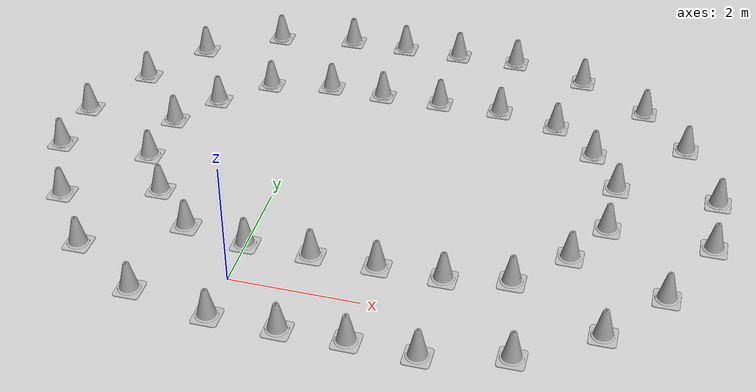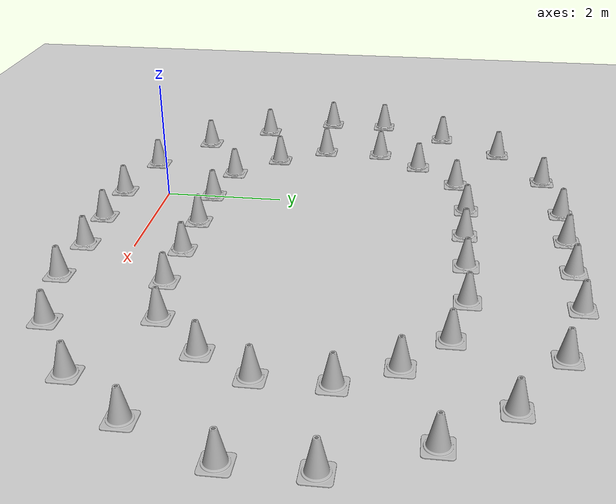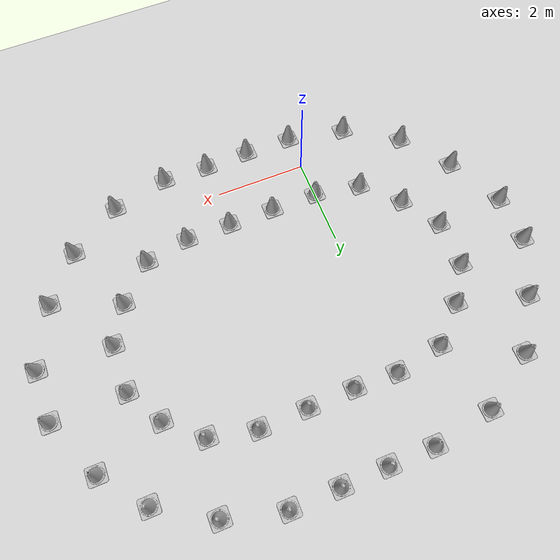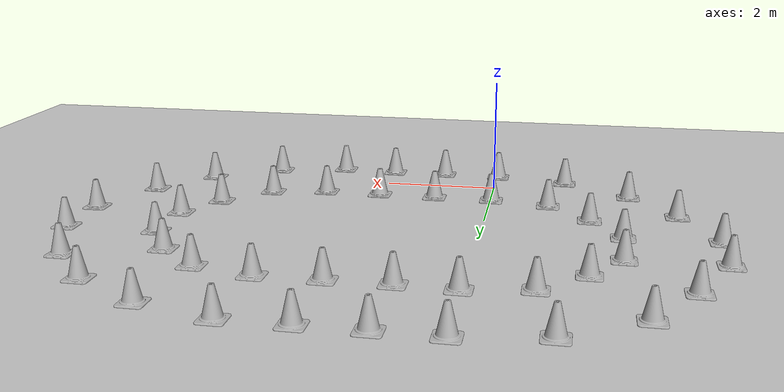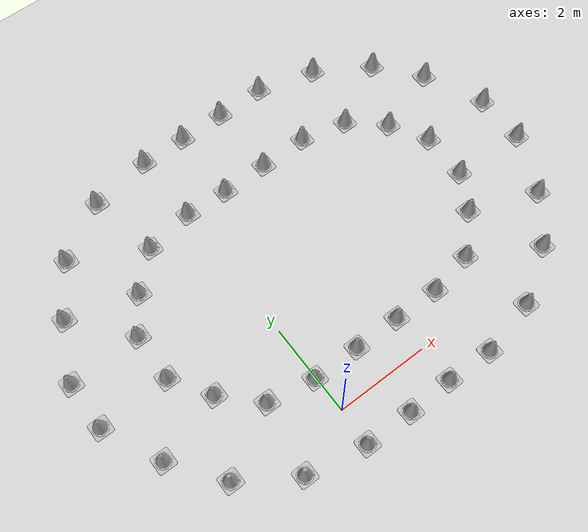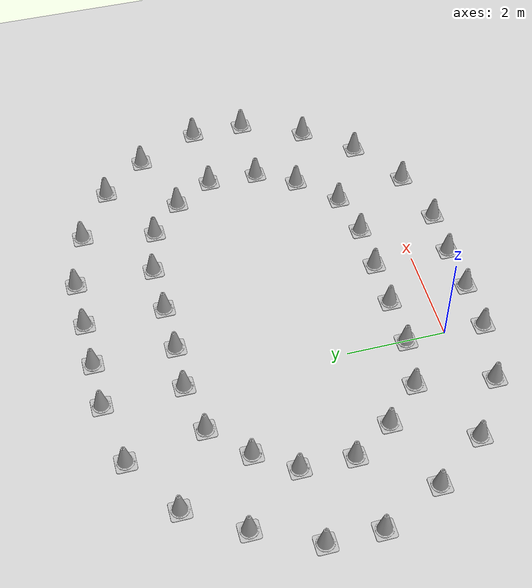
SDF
<sdf version='1.10'>
  <world name='oval_track'>
    <physics name='1ms' type='ignored'>
      <max_step_size>0.001</max_step_size>
      <real_time_factor>1</real_time_factor>
      <real_time_update_rate>1000</real_time_update_rate>
    </physics>
    <plugin name='gz::sim::systems::Physics' filename='gz-sim-physics-system'/>
    <plugin name='gz::sim::systems::UserCommands' filename='gz-sim-user-commands-system'/>
    <plugin name='gz::sim::systems::SceneBroadcaster' filename='gz-sim-scene-broadcaster-system'/>
    <plugin name='gz::sim::systems::Contact' filename='gz-sim-contact-system'/>
    <plugin name="gz::sim::systems::Sensors" filename="gz-sim-sensors-system"/>

    <gravity>0 0 -9.8000000000000007</gravity>
    <magnetic_field>5.5644999999999998e-06 2.2875799999999999e-05 -4.2388400000000002e-05</magnetic_field>
    <atmosphere type='adiabatic'/>
    <scene>
      <ambient>0.400000006 0.400000006 0.400000006 1</ambient>
      <background>0.699999988 0.699999988 0.699999988 1</background>
      <shadows>true</shadows>
    </scene>
    <model name='ground_plane'>
      <static>true</static>
      <link name='link'>
        <collision name='collision'>
          <geometry>
            <plane>
              <normal>0 0 1</normal>
              <size>100 100</size>
            </plane>
          </geometry>
          <surface>
            <friction>
              <ode/>
            </friction>
            <bounce/>
            <contact/>
          </surface>
        </collision>
        <visual name='visual'>
          <geometry>
            <plane>
              <normal>0 0 1</normal>
              <size>100 100</size>
            </plane>
          </geometry>
          <material>
            <ambient>0.800000012 0.800000012 0.800000012 1</ambient>
            <diffuse>0.800000012 0.800000012 0.800000012 1</diffuse>
            <specular>0.800000012 0.800000012 0.800000012 1</specular>
          </material>
        </visual>
        <pose>0 0 0 0 0 0</pose>
        <inertial>
          <pose>0 0 0 0 0 0</pose>
          <mass>1</mass>
          <inertia>
            <ixx>1</ixx>
            <ixy>0</ixy>
            <ixz>0</ixz>
            <iyy>1</iyy>
            <iyz>0</iyz>
            <izz>1</izz>
          </inertia>
        </inertial>
        <enable_wind>false</enable_wind>
      </link>
      <pose>0 0 0 0 0 0</pose>
      <self_collide>false</self_collide>
    </model>
    <include>
      <uri>model://blue_cone</uri>
      <name>blue_cone</name>
      <pose>1.0163165794923539 0.80331492927858439 0 0 0 0</pose>
    </include>
    <include>
      <uri>model://yellow_cone</uri>
      <name>yellow_cone</name>
      <pose>1.0300450812392183 -0.81864984149636388 0 0 0 0</pose>
    </include>
    <include>
      <uri>model://yellow_cone</uri>
      <name>yellow_cone_0</name>
      <pose>2.0190280496205215 -0.79316078177972815 0 0 0 0</pose>
    </include>
    <include>
      <uri>model://blue_cone</uri>
      <name>blue_cone_0</name>
      <pose>2.0281825291857496 0.79967712927132573 0 0 0 0</pose>
    </include>
    <include>
      <uri>model://blue_cone</uri>
      <name>blue_cone_1</name>
      <pose>-0.014879810613528388 0.80601776163143313 0 0 0 0</pose>
    </include>
    <include>
      <uri>model://yellow_cone</uri>
      <name>yellow_cone_1</name>
      <pose>-0.013213696268696395 -0.80258589918585432 0 0 0 0</pose>
    </include>
    <include>
      <uri>model://blue_cone</uri>
      <name>blue_cone_2</name>
      <pose>3.0289286645237974 0.79571214872615548 0 0 0 0</pose>
    </include>
    <include>
      <uri>model://yellow_cone</uri>
      <name>yellow_cone_2</name>
      <pose>3.0314511061653295 -0.82747163132352686 0 0 0 0</pose>
    </include>
    <include>
      <uri>model://blue_cone</uri>
      <name>blue_cone_3</name>
      <pose>4.0040023549881587 0.98173001707773278 0 0 0 0</pose>
    </include>
    <include>
      <uri>model://blue_cone</uri>
      <name>blue_cone_4</name>
      <pose>4.7465751133697083 1.7285550554952538 0 0 0 0</pose>
    </include>
    <include>
      <uri>model://blue_cone</uri>
      <name>blue_cone_5</name>
      <pose>5.2030607455952325 2.5251731769112382 0 0 0 0</pose>
    </include>
    <include>
      <uri>model://blue_cone</uri>
      <name>blue_cone_6</name>
      <pose>5.2271063905860249 3.5650121951348499 0 0 0 0</pose>
    </include>
    <include>
      <uri>model://blue_cone</uri>
      <name>blue_cone_7</name>
      <pose>4.7621082718435606 4.3704227505147415 0 0 0 0</pose>
    </include>
    <include>
      <uri>model://blue_cone</uri>
      <name>blue_cone_8</name>
      <pose>4.0512779393995633 5.0050018864630399 0 0 0 0</pose>
    </include>
    <include>
      <uri>model://blue_cone</uri>
      <name>blue_cone_9</name>
      <pose>3.0471725319140912 5.2297028449960887 0 0 0 0</pose>
    </include>
    <include>
      <uri>model://blue_cone</uri>
      <name>blue_cone_10</name>
      <pose>1.9997502656546304 5.2136758109544452 0 0 0 0</pose>
    </include>
    <include>
      <uri>model://blue_cone</uri>
      <name>blue_cone_11</name>
      <pose>0.98488779651480041 5.1982845643400228 0 0 0 0</pose>
    </include>
    <include>
      <uri>model://blue_cone</uri>
      <name>blue_cone_12</name>
      <pose>0.045711253137796559 5.2287160848829455 0 0 0 0</pose>
    </include>
    <include>
      <uri>model://blue_cone</uri>
      <name>blue_cone_13</name>
      <pose>-1.0076896581458024 5.0454531043284998 0 0 0 0</pose>
    </include>
    <include>
      <uri>model://blue_cone</uri>
      <name>blue_cone_14</name>
      <pose>-1.7423822283318517 4.3446476071721261 0 0 0 0</pose>
    </include>
    <include>
      <uri>model://blue_cone</uri>
      <name>blue_cone_15</name>
      <pose>-2.2569442203459404 3.5928474161467854 0 0 0 0</pose>
    </include>
    <include>
      <uri>model://blue_cone</uri>
      <name>blue_cone_16</name>
      <pose>-2.2791343744985388 2.5376189223165455 0 0 0 0</pose>
    </include>
    <include>
      <uri>model://blue_cone</uri>
      <name>blue_cone_17</name>
      <pose>-1.0325877070299101 0.98104085022726162 0 0 0 0</pose>
    </include>
    <include>
      <uri>model://blue_cone</uri>
      <name>blue_cone_18</name>
      <pose>-1.7515607215635574 1.7106613492341973 0 0 0 0</pose>
    </include>
    <include>
      <uri>model://yellow_cone</uri>
      <name>yellow_cone_3</name>
      <pose>4.2748136520385742 -0.54185998439788818 0 0 0 0</pose>
    </include>
    <include>
      <uri>model://yellow_cone</uri>
      <name>yellow_cone_4</name>
      <pose>5.4186954498291016 0.19816200435161591 0 0 0 0</pose>
    </include>
    <include>
      <uri>model://yellow_cone</uri>
      <name>yellow_cone_5</name>
      <pose>6.2082500457763672 1.1770004034042358 0 0 0 0</pose>
    </include>
    <include>
      <uri>model://yellow_cone</uri>
      <name>yellow_cone_6</name>
      <pose>6.8006505966186523 2.4616398811340332 0 0 0 0</pose>
    </include>
    <include>
      <uri>model://yellow_cone</uri>
      <name>yellow_cone_7</name>
      <pose>6.8064398765563965 3.5804970264434814 0 0 0 0</pose>
    </include>
    <include>
      <uri>model://yellow_cone</uri>
      <name>yellow_cone_8</name>
      <pose>6.2181000709533691 4.8785114288330078 0 0 0 0</pose>
    </include>
    <include>
      <uri>model://yellow_cone</uri>
      <name>yellow_cone_9</name>
      <pose>5.4566664695739746 5.7957901954650879 0 0 0 0</pose>
    </include>
    <include>
      <uri>model://yellow_cone</uri>
      <name>yellow_cone_10</name>
      <pose>3.0564510221253287 6.8314941668659817 0 0 0 0</pose>
    </include>
    <include>
      <uri>model://yellow_cone</uri>
      <name>yellow_cone_11</name>
      <pose>2.0003308475907886 6.8237108753084632 0 0 0 0</pose>
    </include>
    <include>
      <uri>model://yellow_cone</uri>
      <name>yellow_cone_12</name>
      <pose>0.99986514592213949 6.8167845352278551 0 0 0 0</pose>
    </include>
    <include>
      <uri>model://yellow_cone</uri>
      <name>yellow_cone_13</name>
      <pose>0.0061008868265237659 6.8165663885301893 0 0 0 0</pose>
    </include>
    <include>
      <uri>model://yellow_cone</uri>
      <name>yellow_cone_14</name>
      <pose>4.3122119903564453 6.496150016784668 0 0 0 0</pose>
    </include>
    <include>
      <uri>model://yellow_cone</uri>
      <name>yellow_cone_15</name>
      <pose>-3.8090474615185483 3.5565427213582481 0 0 0 0</pose>
    </include>
    <include>
      <uri>model://yellow_cone</uri>
      <name>yellow_cone_16</name>
      <pose>-3.8165380840226408 2.486869823203449 0 0 0 0</pose>
    </include>
    <include>
      <uri>model://yellow_cone</uri>
      <name>yellow_cone_17</name>
      <pose>-3.224600076675415 1.249750018119812 0 0 0 0</pose>
    </include>
    <include>
      <uri>model://yellow_cone</uri>
      <name>yellow_cone_18</name>
      <pose>-2.4459544381106513 0.1943217171924787 0 0 0 0</pose>
    </include>
    <include>
      <uri>model://yellow_cone</uri>
      <name>yellow_cone_19</name>
      <pose>-1.2945369482040405 -0.55303299427032471 0 0 0 0</pose>
    </include>
    <include>
      <uri>model://yellow_cone</uri>
      <name>yellow_cone_20</name>
      <pose>-1.3236786127090454 6.6014599800109863 0 0 0 0</pose>
    </include>
    <include>
      <uri>model://yellow_cone</uri>
      <name>yellow_cone_21</name>
      <pose>-2.5339104150331488 5.8468028460992576 0 0 0 0</pose>
    </include>
    <include>
      <uri>model://yellow_cone</uri>
      <name>yellow_cone_22</name>
      <pose>-3.2331299781799316 4.7682280540466309 0 0 0 0</pose>
    </include>
    <light name='sun' type='directional'>
      <pose>0 0 10 0 0 0</pose>
      <cast_shadows>true</cast_shadows>
      <intensity>1</intensity>
      <direction>-0.5 0.10000000000000001 -0.90000000000000002</direction>
      <diffuse>0.800000012 0.800000012 0.800000012 1</diffuse>
      <specular>0.200000003 0.200000003 0.200000003 1</specular>
      <attenuation>
        <range>1000</range>
        <linear>0.01</linear>
        <constant>0.90000000000000002</constant>
        <quadratic>0.001</quadratic>
      </attenuation>
      <spot>
        <inner_angle>0</inner_angle>
        <outer_angle>0</outer_angle>
        <falloff>0</falloff>
      </spot>
    </light>
  </world>
</sdf>

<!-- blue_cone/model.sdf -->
<sdf version="1.6">
<model name="blue_cone">
  <static>true</static>
  <link name="link">

    <visual name="visual">
      <pose>0 0 0.25 0 0 0</pose>
      <geometry>
        <mesh>
          <uri>model://blue_cone/meshes/cone_blue.obj</uri>
          <scale>0.1 0.1 0.1</scale>
        </mesh>
      </geometry>
    </visual>

    <collision name="collision">
      <geometry>
        <box>
          <size>0.10 0.10 0.1</size>
        </box>
      </geometry>
    </collision>

    <inertial>
      <mass>0.1</mass>
      <inertia>
        <ixx>0.000554</ixx>
        <iyy>0.000554</iyy>
        <izz>0.000083</izz>
        <ixy>0.0</ixy>
        <ixz>0.0</ixz>
        <iyz>0.0</iyz>
      </inertia>
    </inertial>

  </link>
</model>
</sdf>

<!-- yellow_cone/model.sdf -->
<sdf version="1.6">
  <model name="yellow_cone">
    <static>true</static>
    <link name="link">
      <visual name="visual">
      <pose>0 0 0.25 0 0 0</pose>
        <geometry>
          <mesh>
            <uri>model://yellow_cone/meshes/cone.obj</uri>
            <scale>0.1 0.1 0.1</scale>
          </mesh>
        </geometry>

      </visual>

      <collision name="collision">
        <geometry>
            <box>
              <size>0.1 0.1 0.10</size>
            </box>
        </geometry>
      </collision>

      <inertial>
        <mass>0.1</mass>
        <inertia>
          <ixx>0.000554</ixx>
          <iyy>0.000554</iyy>
          <izz>0.000083</izz>
          <ixy>0.0</ixy>
          <ixz>0.0</ixz>
          <iyz>0.0</iyz>
        </inertia>
      </inertial>
    </link>
  </model>
</sdf>
